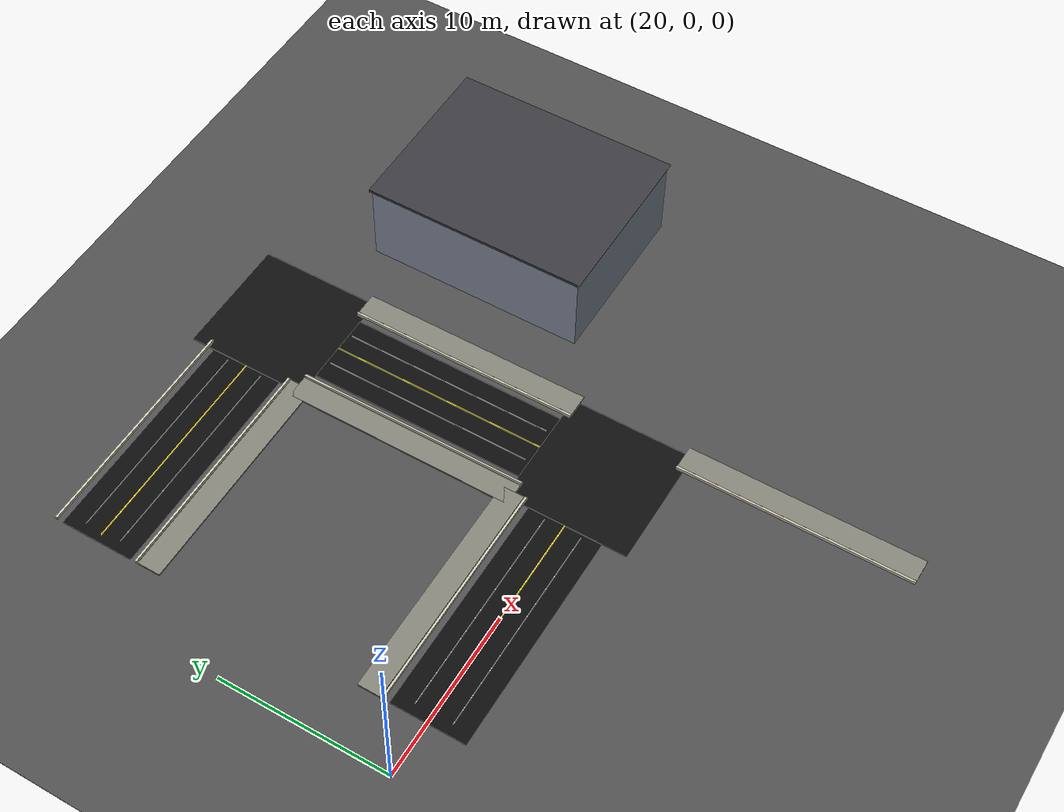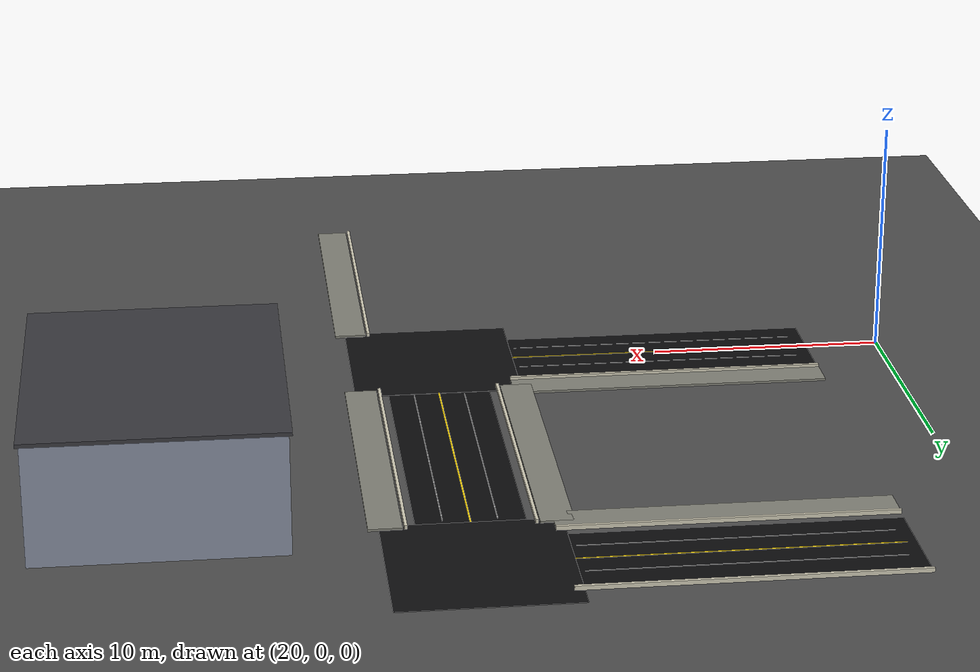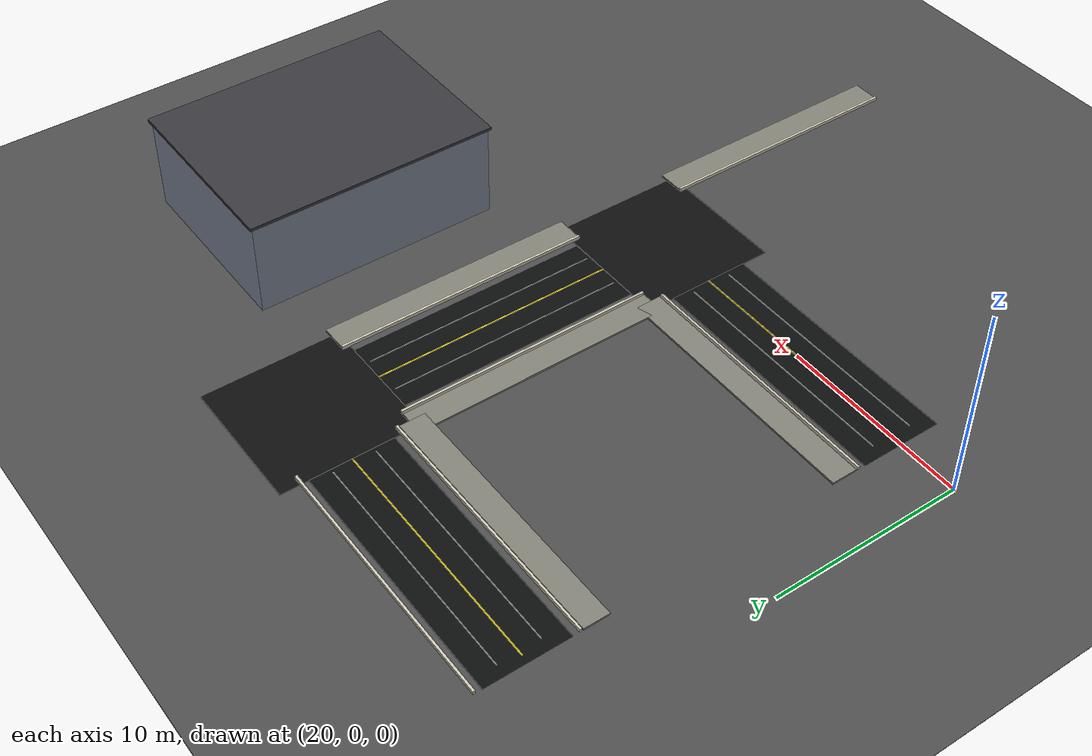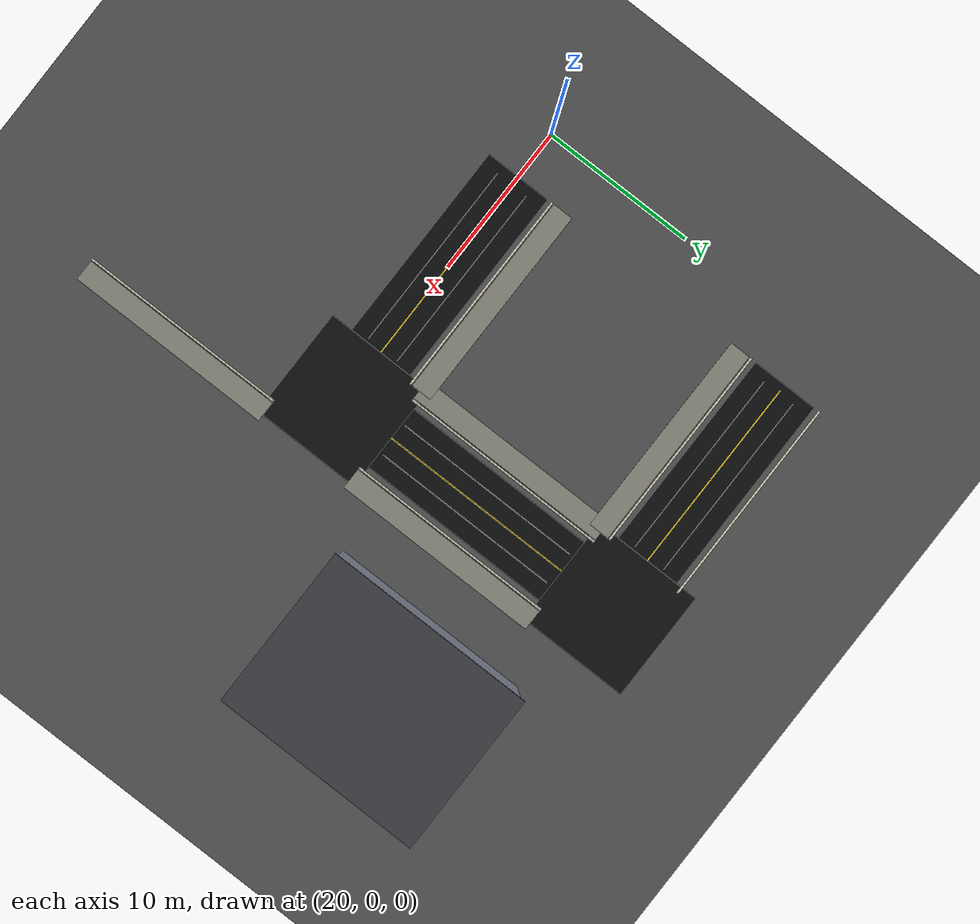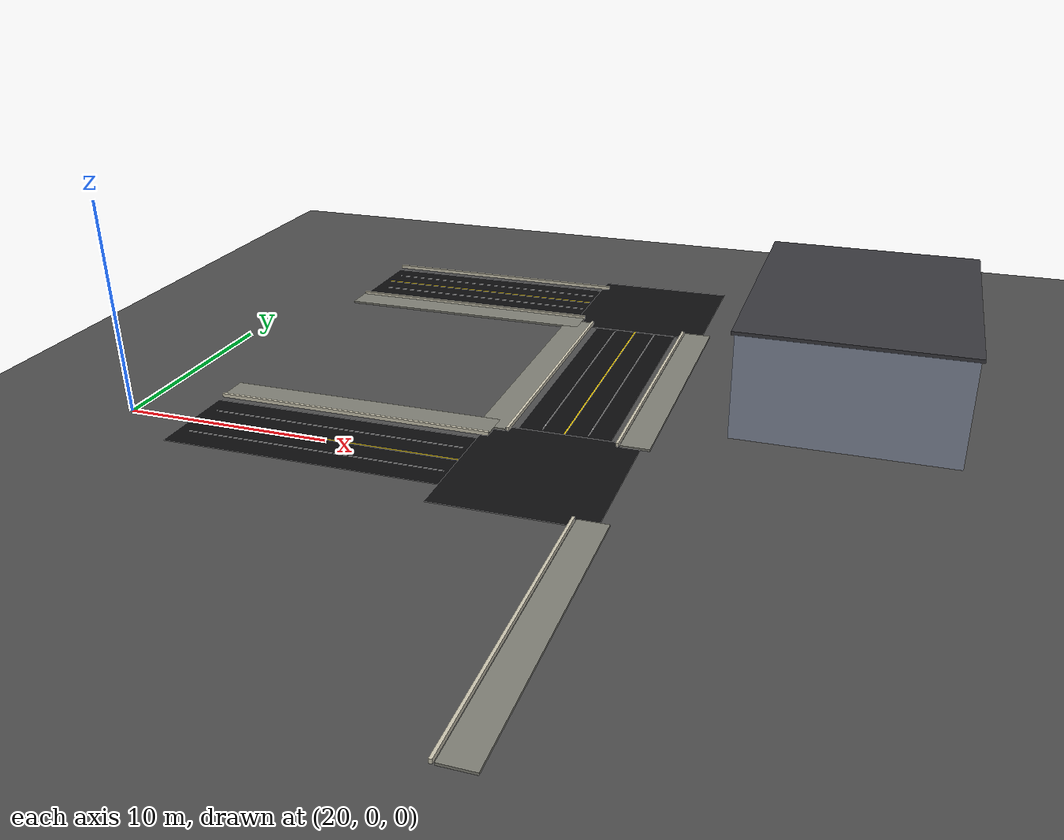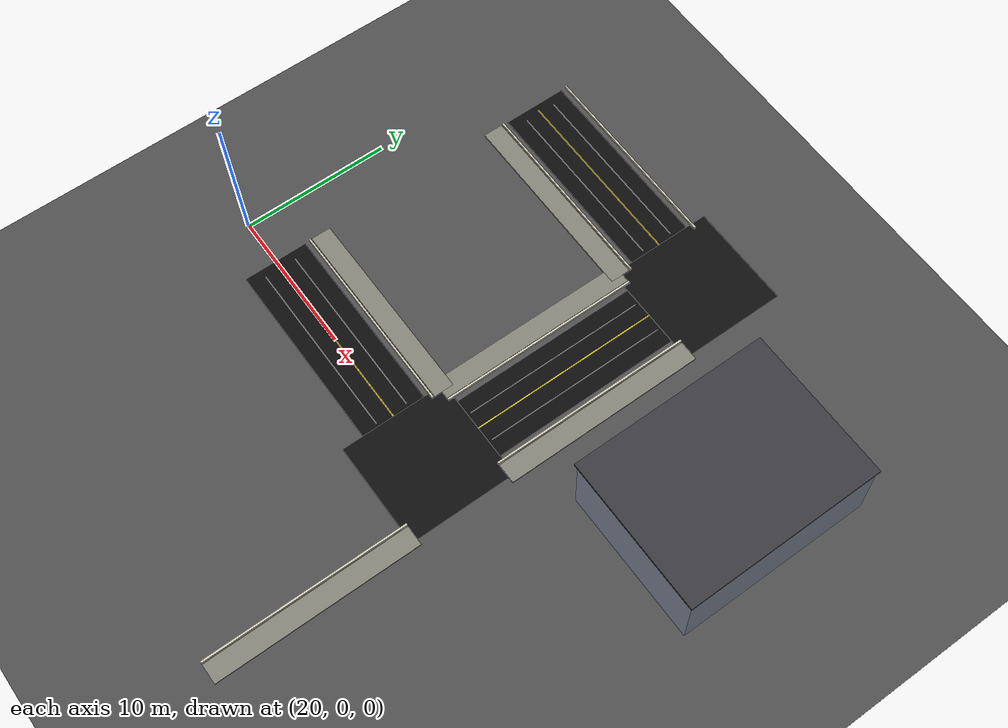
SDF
<sdf version="1.9">
 <world name="smart_city_world">
  <model name="ground">
   <static>true</static>
   <link name="link">
    <collision name="collision"><geometry><box><size>145 145 0.05</size></box></geometry></collision>
    <visual name="visual">
     <geometry><box><size>145 145 0.05</size></box></geometry>
     <material><ambient>0.30 0.30 0.30 1</ambient><diffuse>0.30 0.30 0.30 1</diffuse></material>
    </visual>
   </link>
  </model>
  <model name="road_e8">
   <static>true</static>
   <pose>30.000 20.000 0.018 0 0 0.000000</pose>
   <link name="link">
    <collision name="collision"><geometry><box><size>13.600 4.350 0.030</size></box></geometry></collision>
    <visual name="visual">
     <geometry><box><size>13.600 4.350 0.030</size></box></geometry>
     <material><ambient>0.045 0.047 0.05 1</ambient><diffuse>0.045 0.047 0.05 1</diffuse></material>
    </visual>
   </link>
  </model>
  <model name="center_line_e8">
   <static>true</static>
   <pose>30.000 20.000 0.052 0 0 0.000000</pose>
   <link name="link">
    <visual name="visual">
     <geometry><box><size>12.800 0.070 0.010</size></box></geometry>
     <material><ambient>1 0.86 0.05 1</ambient><diffuse>1 0.86 0.05 1</diffuse></material>
    </visual>
   </link>
  </model>
  <model name="curb_e8_L">
   <static>true</static>
   <pose>30.000 22.550 0.130 0 0 0.000000</pose>
   <link name="link">
    <visual name="visual">
     <geometry><box><size>13.600 0.120 0.180</size></box></geometry>
     <material><ambient>0.8 0.78 0.7 1</ambient><diffuse>0.8 0.78 0.7 1</diffuse></material>
    </visual>
   </link>
  </model>
  <model name="edge_line_e8_L">
   <static>true</static>
   <pose>30.000 21.080 0.054 0 0 0.000000</pose>
   <link name="link">
    <visual name="visual">
     <geometry><box><size>12.400 0.035 0.010</size></box></geometry>
     <material><ambient>0.85 0.85 0.85 1</ambient><diffuse>0.85 0.85 0.85 1</diffuse></material>
    </visual>
   </link>
  </model>
  <model name="sidewalk_e8_R">
   <static>true</static>
   <pose>30.000 16.650 0.075 0 0 0.000000</pose>
   <link name="link">
    <visual name="visual">
     <geometry><box><size>13.600 1.350 0.100</size></box></geometry>
     <material><ambient>0.5 0.5 0.46 1</ambient><diffuse>0.5 0.5 0.46 1</diffuse></material>
    </visual>
   </link>
  </model>
  <model name="curb_e8_R">
   <static>true</static>
   <pose>30.000 17.450 0.130 0 0 0.000000</pose>
   <link name="link">
    <visual name="visual">
     <geometry><box><size>13.600 0.120 0.180</size></box></geometry>
     <material><ambient>0.8 0.78 0.7 1</ambient><diffuse>0.8 0.78 0.7 1</diffuse></material>
    </visual>
   </link>
  </model>
  <model name="edge_line_e8_R">
   <static>true</static>
   <pose>30.000 18.920 0.054 0 0 0.000000</pose>
   <link name="link">
    <visual name="visual">
     <geometry><box><size>12.400 0.035 0.010</size></box></geometry>
     <material><ambient>0.85 0.85 0.85 1</ambient><diffuse>0.85 0.85 0.85 1</diffuse></material>
    </visual>
   </link>
  </model>
  <model name="road_e12">
   <static>true</static>
   <pose>30.000 0.000 0.018 0 0 0.000000</pose>
   <link name="link">
    <collision name="collision"><geometry><box><size>13.600 4.350 0.030</size></box></geometry></collision>
    <visual name="visual">
     <geometry><box><size>13.600 4.350 0.030</size></box></geometry>
     <material><ambient>0.045 0.047 0.05 1</ambient><diffuse>0.045 0.047 0.05 1</diffuse></material>
    </visual>
   </link>
  </model>
  <model name="center_line_e12">
   <static>true</static>
   <pose>30.000 0.000 0.052 0 0 0.000000</pose>
   <link name="link">
    <visual name="visual">
     <geometry><box><size>12.800 0.070 0.010</size></box></geometry>
     <material><ambient>1 0.86 0.05 1</ambient><diffuse>1 0.86 0.05 1</diffuse></material>
    </visual>
   </link>
  </model>
  <model name="sidewalk_e12_L">
   <static>true</static>
   <pose>30.000 3.350 0.075 0 0 0.000000</pose>
   <link name="link">
    <visual name="visual">
     <geometry><box><size>13.600 1.350 0.100</size></box></geometry>
     <material><ambient>0.5 0.5 0.46 1</ambient><diffuse>0.5 0.5 0.46 1</diffuse></material>
    </visual>
   </link>
  </model>
  <model name="curb_e12_L">
   <static>true</static>
   <pose>30.000 2.550 0.130 0 0 0.000000</pose>
   <link name="link">
    <visual name="visual">
     <geometry><box><size>13.600 0.120 0.180</size></box></geometry>
     <material><ambient>0.8 0.78 0.7 1</ambient><diffuse>0.8 0.78 0.7 1</diffuse></material>
    </visual>
   </link>
  </model>
  <model name="edge_line_e12_L">
   <static>true</static>
   <pose>30.000 1.080 0.054 0 0 0.000000</pose>
   <link name="link">
    <visual name="visual">
     <geometry><box><size>12.400 0.035 0.010</size></box></geometry>
     <material><ambient>0.85 0.85 0.85 1</ambient><diffuse>0.85 0.85 0.85 1</diffuse></material>
    </visual>
   </link>
  </model>
  <model name="edge_line_e12_R">
   <static>true</static>
   <pose>30.000 -1.080 0.054 0 0 0.000000</pose>
   <link name="link">
    <visual name="visual">
     <geometry><box><size>12.400 0.035 0.010</size></box></geometry>
     <material><ambient>0.85 0.85 0.85 1</ambient><diffuse>0.85 0.85 0.85 1</diffuse></material>
    </visual>
   </link>
  </model>
  <model name="road_e38">
   <static>true</static>
   <pose>40.000 10.000 0.018 0 0 -1.570796</pose>
   <link name="link">
    <collision name="collision"><geometry><box><size>13.600 4.350 0.030</size></box></geometry></collision>
    <visual name="visual">
     <geometry><box><size>13.600 4.350 0.030</size></box></geometry>
     <material><ambient>0.045 0.047 0.05 1</ambient><diffuse>0.045 0.047 0.05 1</diffuse></material>
    </visual>
   </link>
  </model>
  <model name="center_line_e38">
   <static>true</static>
   <pose>40.000 10.000 0.052 0 0 -1.570796</pose>
   <link name="link">
    <visual name="visual">
     <geometry><box><size>12.800 0.070 0.010</size></box></geometry>
     <material><ambient>1 0.86 0.05 1</ambient><diffuse>1 0.86 0.05 1</diffuse></material>
    </visual>
   </link>
  </model>
  <model name="sidewalk_e38_L">
   <static>true</static>
   <pose>43.350 10.000 0.075 0 0 -1.570796</pose>
   <link name="link">
    <visual name="visual">
     <geometry><box><size>13.600 1.350 0.100</size></box></geometry>
     <material><ambient>0.5 0.5 0.46 1</ambient><diffuse>0.5 0.5 0.46 1</diffuse></material>
    </visual>
   </link>
  </model>
  <model name="curb_e38_L">
   <static>true</static>
   <pose>42.550 10.000 0.130 0 0 -1.570796</pose>
   <link name="link">
    <visual name="visual">
     <geometry><box><size>13.600 0.120 0.180</size></box></geometry>
     <material><ambient>0.8 0.78 0.7 1</ambient><diffuse>0.8 0.78 0.7 1</diffuse></material>
    </visual>
   </link>
  </model>
  <model name="edge_line_e38_L">
   <static>true</static>
   <pose>41.080 10.000 0.054 0 0 -1.570796</pose>
   <link name="link">
    <visual name="visual">
     <geometry><box><size>12.400 0.035 0.010</size></box></geometry>
     <material><ambient>0.85 0.85 0.85 1</ambient><diffuse>0.85 0.85 0.85 1</diffuse></material>
    </visual>
   </link>
  </model>
  <model name="sidewalk_e38_R">
   <static>true</static>
   <pose>36.650 10.000 0.075 0 0 -1.570796</pose>
   <link name="link">
    <visual name="visual">
     <geometry><box><size>13.600 1.350 0.100</size></box></geometry>
     <material><ambient>0.5 0.5 0.46 1</ambient><diffuse>0.5 0.5 0.46 1</diffuse></material>
    </visual>
   </link>
  </model>
  <model name="curb_e38_R">
   <static>true</static>
   <pose>37.450 10.000 0.130 0 0 -1.570796</pose>
   <link name="link">
    <visual name="visual">
     <geometry><box><size>13.600 0.120 0.180</size></box></geometry>
     <material><ambient>0.8 0.78 0.7 1</ambient><diffuse>0.8 0.78 0.7 1</diffuse></material>
    </visual>
   </link>
  </model>
  <model name="edge_line_e38_R">
   <static>true</static>
   <pose>38.920 10.000 0.054 0 0 -1.570796</pose>
   <link name="link">
    <visual name="visual">
     <geometry><box><size>12.400 0.035 0.010</size></box></geometry>
     <material><ambient>0.85 0.85 0.85 1</ambient><diffuse>0.85 0.85 0.85 1</diffuse></material>
    </visual>
   </link>
  </model>
  <model name="sidewalk_e39_L">
   <static>true</static>
   <pose>43.350 -10.000 0.075 0 0 -1.570796</pose>
   <link name="link">
    <visual name="visual">
     <geometry><box><size>13.600 1.350 0.100</size></box></geometry>
     <material><ambient>0.5 0.5 0.46 1</ambient><diffuse>0.5 0.5 0.46 1</diffuse></material>
    </visual>
   </link>
  </model>
  <model name="curb_e39_L">
   <static>true</static>
   <pose>42.550 -10.000 0.130 0 0 -1.570796</pose>
   <link name="link">
    <visual name="visual">
     <geometry><box><size>13.600 0.120 0.180</size></box></geometry>
     <material><ambient>0.8 0.78 0.7 1</ambient><diffuse>0.8 0.78 0.7 1</diffuse></material>
    </visual>
   </link>
  </model>
  <model name="intersection_plate_n10">
   <static>true</static>
   <pose>40.000 20.000 0.025 0 0 0.000000</pose>
   <link name="link">
    <collision name="collision"><geometry><box><size>7.200 7.200 0.035</size></box></geometry></collision>
    <visual name="visual">
     <geometry><box><size>7.200 7.200 0.035</size></box></geometry>
     <material><ambient>0.055 0.055 0.058 1</ambient><diffuse>0.055 0.055 0.058 1</diffuse></material>
    </visual>
   </link>
  </model>
  <model name="intersection_plate_n15">
   <static>true</static>
   <pose>40.000 0.000 0.025 0 0 0.000000</pose>
   <link name="link">
    <collision name="collision"><geometry><box><size>7.200 7.200 0.035</size></box></geometry></collision>
    <visual name="visual">
     <geometry><box><size>7.200 7.200 0.035</size></box></geometry>
     <material><ambient>0.055 0.055 0.058 1</ambient><diffuse>0.055 0.055 0.058 1</diffuse></material>
    </visual>
   </link>
  </model>
  <model name="mall">
   <static>true</static>
   <pose>52.000 12.000 2.500 0 0 0.000000</pose>
   <link name="link">
    <collision name="collision"><geometry><box><size>10.000 13.000 5.000</size></box></geometry></collision>
    <visual name="visual">
     <geometry><box><size>10.000 13.000 5.000</size></box></geometry>
     <material><ambient>0.52 0.55 0.62 1</ambient><diffuse>0.52 0.55 0.62 1</diffuse></material>
    </visual>
   </link>
  </model>
  <model name="mall_roof">
   <static>true</static>
   <pose>52.000 12.000 5.080 0 0 0.000000</pose>
   <link name="link">
    <visual name="visual">
     <geometry><box><size>10.250 13.250 0.160</size></box></geometry>
     <material><ambient>0.22 0.22 0.24 1</ambient><diffuse>0.22 0.22 0.24 1</diffuse></material>
    </visual>
   </link>
  </model>
 </world>
</sdf>
